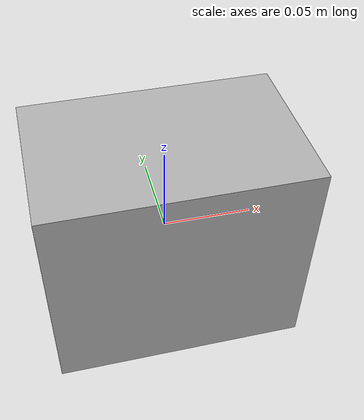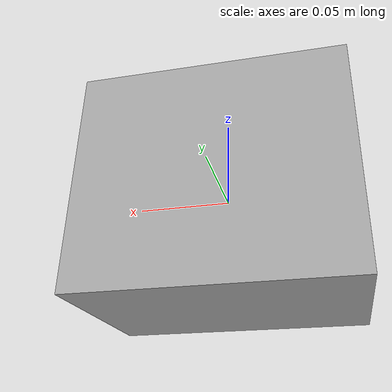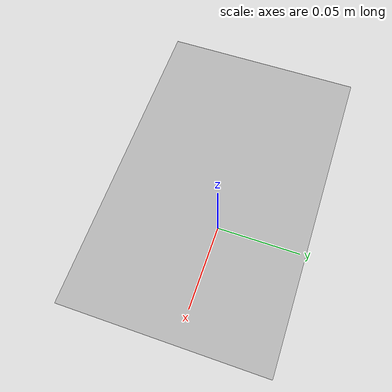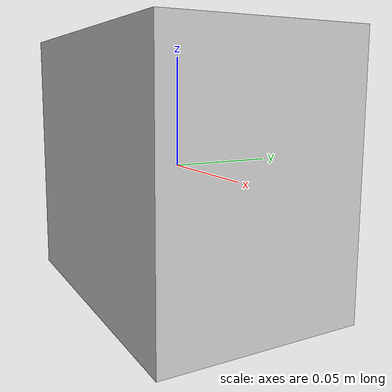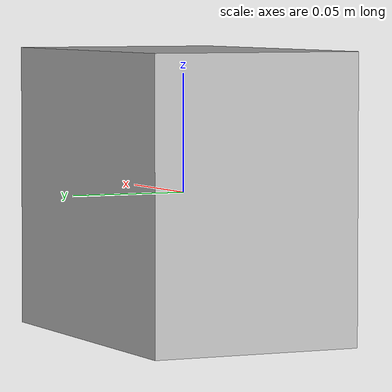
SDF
<?xml version="1.0" ?>
<sdf version="1.5">
  <model name="mpnet_box1">
    <pose frame="world">0 0 0.0 0 0 0</pose>
    <link name="mpnet_box1_link">
      <inertial>
        <mass>0.1</mass>
      </inertial>
      <visual name="mpnet_box1_visual">
        <geometry>
          <box>
            <size>0.14 0.09 0.12</size>
          </box>
        </geometry>
      </visual>

      <collision name="mpnet_box1_collision">
        <geometry>
          <box>
            <size>0.14 0.09 0.12</size>
          </box>
        </geometry>
      </collision>

    </link>
  </model>
</sdf>
